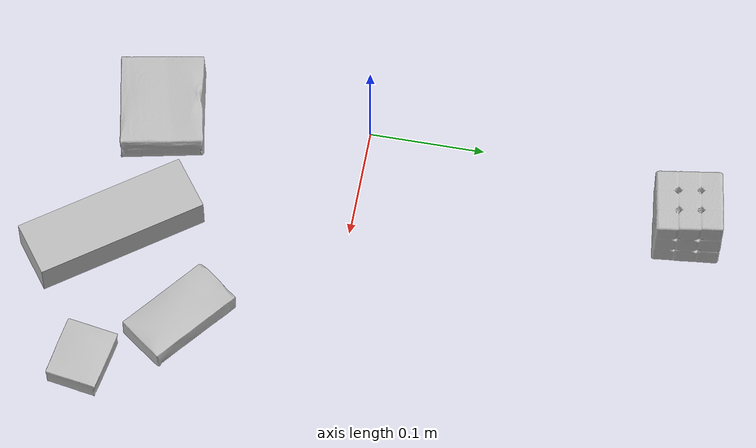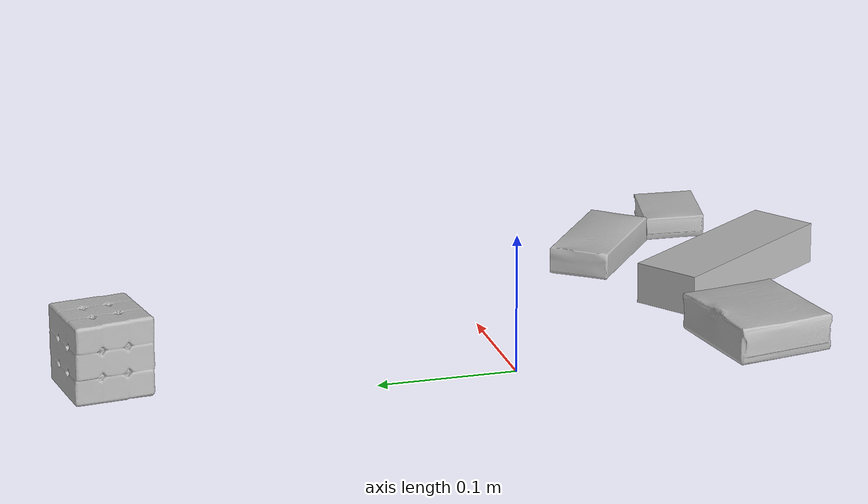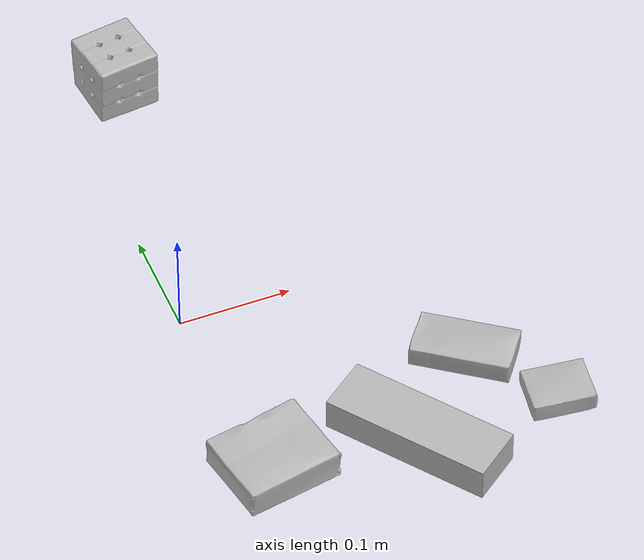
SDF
<sdf version="1.4">
  <world name="default">
    <light name="light1" type="point">
      <pose>0 0 1 0 0 0</pose>
      <diffuse>3 3 3 1</diffuse>
      <specular>3 3 3 1</specular>
    </light>
    <light name="light2" type="point">
      <pose>0 0.5 2 0 0 0</pose>
      <diffuse>1 1 1 1</diffuse>
      <specular>1 1 1 1</specular>
    </light>
    <light name="light3" type="point">
      <pose>0 0.5 2 0 0 0</pose>
      <diffuse>3 3 3 1</diffuse>
      <specular>3 3 3 1</specular>
    </light>
    <scene>
      <ambient>0.7 0.7 0.7</ambient>
    </scene>
    <model name="box1">
      <link name="link_box1">
        <collision name="default">
          <geometry>
            <mesh>
              <uri>model://sugar_box/collision_meshes/collision.obj</uri>
              <scale>0.5 0.5 0.5</scale>
            </mesh>
          </geometry>
          <surface>
            <friction>
              <ode>
                <mu>0.5</mu>
                <mu2>0.5</mu2>
              </ode>
            </friction>
          <contact>
        <ode>
            <max_vel>0</max_vel>
            <min_depth>0.0001</min_depth>
            <kp>1e8</kp>
        </ode>
    </contact></surface>
        </collision>
        <visual name="default">
          <geometry>
            <mesh>
              <uri>model://sugar_box/visual_meshes/visual.dae</uri>
              <scale>0.5 0.5 0.5</scale>
            </mesh>
          </geometry>
        </visual>
        <inertial>
          <mass>0.06211651861667633</mass>
          <pose>0.0005171863595023751 1.9245546354795806e-05 -0.00018182402709499002 -0.00040462630054681676 0.0010506634057476226 0.0026153787889456807</pose>
          <inertia>
            <ixx>1.2938825e-05</ixx>
            <iyy>4.1820942e-05</iyy>
            <izz>5.0064667e-05</izz>
            <ixy>0</ixy>
            <ixz>0</ixz>
            <iyz>0</iyz>
          </inertia>
        </inertial>
      </link>
      <pose>0.20872554183006287 -0.12540565431118011 0.011399300768971443 0.0007755947420407959 -0.023433309735905905 -0.6632557056507068</pose>
    </model>
    <model name="box2">
      <link name="link_box2">
        <collision name="default">
          <geometry>
            <mesh>
              <uri>model://rubiks_cube/collision_meshes/collision.obj</uri>
              <scale>1.0 1.0 1.0</scale>
            </mesh>
          </geometry>
          <surface>
            <friction>
              <ode>
                <mu>0.5</mu>
                <mu2>0.5</mu2>
              </ode>
            </friction>
          <contact>
        <ode>
            <max_vel>0</max_vel>
            <min_depth>0.0001</min_depth>
            <kp>1e8</kp>
        </ode>
    </contact></surface>
        </collision>
        <visual name="default">
          <geometry>
            <mesh>
              <uri>model://rubiks_cube/visual_meshes/visual.dae</uri>
              <scale>1.0 1.0 1.0</scale>
            </mesh>
          </geometry>
        </visual>
        <inertial>
          <mass>0.2700360119342804</mass>
          <pose>2.6721041649580002e-05 5.256967051536776e-05 -7.264316536748083e-06 -0.05467324422766238 -0.0981422115654675 -0.034454566623261795</pose>
          <inertia>
            <ixx>0.00014921304</ixx>
            <iyy>0.00014851718</iyy>
            <izz>0.00015044949</izz>
            <ixy>0</ixy>
            <ixz>0</ixz>
            <iyz>0</iyz>
          </inertia>
        </inertial>
      </link>
      <pose>0.0471007376909256 0.2826857268810272 0.028678998351097107 -1.6348637167000915e-06 3.061273543406803e-07 -1.4271457897043236</pose>
    </model>
    <model name="box3">
      <link name="link_box3">
        <collision name="default">
          <geometry>
            <mesh>
              <uri>model://jenga/collision_meshes/collision.obj</uri>
              <scale>1.0 1.0 1.0</scale>
            </mesh>
          </geometry>
          <surface>
            <friction>
              <ode>
                <mu>0.5</mu>
                <mu2>0.5</mu2>
              </ode>
            </friction>
          <contact>
        <ode>
            <max_vel>0</max_vel>
            <min_depth>0.0001</min_depth>
            <kp>1e8</kp>
        </ode>
    </contact></surface>
        </collision>
        <visual name="default">
          <geometry>
            <mesh>
              <uri>model://jenga/visual_meshes/visual.dae</uri>
              <scale>1.0 1.0 1.0</scale>
            </mesh>
          </geometry>
        </visual>
        <inertial>
          <mass>0.12586519122123718</mass>
          <pose>-2.502855807051674e-07 -0.00010250010382151231 -4.0923401684267446e-05 0.0 -7.342154049184251e-07 0.0</pose>
          <inertia>
            <ixx>3.482995e-05</ixx>
            <iyy>0.0002360068</iyy>
            <izz>0.00025195733</izz>
            <ixy>0</ixy>
            <ixz>0</ixz>
            <iyz>0</iyz>
          </inertia>
        </inertial>
      </link>
      <pose>0.13547314703464508 -0.19953611493110657 0.01499999687075615 2.1005933676852717e-08 -3.331425660091705e-09 2.204317549361354</pose>
    </model>
    <model name="box4">
      <link name="link_box4">
        <collision name="default">
          <geometry>
            <mesh>
              <uri>model://gelatin_box/collision_meshes/collision.obj</uri>
              <scale>1.0 1.0 1.0</scale>
            </mesh>
          </geometry>
          <surface>
            <friction>
              <ode>
                <mu>0.5</mu>
                <mu2>0.5</mu2>
              </ode>
            </friction>
          <contact>
        <ode>
            <max_vel>0</max_vel>
            <min_depth>0.0001</min_depth>
            <kp>1e8</kp>
        </ode>
    </contact></surface>
        </collision>
        <visual name="default">
          <geometry>
            <mesh>
              <uri>model://gelatin_box/visual_meshes/visual.dae</uri>
              <scale>1.0 1.0 1.0</scale>
            </mesh>
          </geometry>
        </visual>
        <inertial>
          <mass>0.0925464928150177</mass>
          <pose>0.0004319618456065655 0.00011156871914863586 -0.0003640321083366871 -0.0010503719798216618 -0.004755819622564704 0.01644055760929568</pose>
          <inertia>
            <ixx>6.533027e-05</ixx>
            <iyy>4.6665074e-05</iyy>
            <izz>9.9447236e-05</izz>
            <ixy>0</ixy>
            <ixz>0</ixz>
            <iyz>0</iyz>
          </inertia>
        </inertial>
      </link>
      <pose>0.013647293671965599 -0.18084798753261566 0.015168318524956703 0.005596899263544656 -0.007303928679982985 1.749846153832799</pose>
    </model>
    <model name="box5">
      <link name="link_box5">
        <collision name="default">
          <geometry>
            <mesh>
              <uri>model://pudding_box/collision_meshes/collision.obj</uri>
              <scale>0.5 0.5 0.5</scale>
            </mesh>
          </geometry>
          <surface>
            <friction>
              <ode>
                <mu>0.5</mu>
                <mu2>0.5</mu2>
              </ode>
            </friction>
          <contact>
        <ode>
            <max_vel>0</max_vel>
            <min_depth>0.0001</min_depth>
            <kp>1e8</kp>
        </ode>
    </contact></surface>
        </collision>
        <visual name="default">
          <geometry>
            <mesh>
              <uri>model://pudding_box/visual_meshes/visual.dae</uri>
              <scale>0.5 0.5 0.5</scale>
            </mesh>
          </geometry>
        </visual>
        <inertial>
          <mass>0.0266704261302948</mass>
          <pose>0.00024474109522998333 0.00040339428232982755 -0.0002594413817860186 0.005213101812636465 -0.006603797316727521 0.020079823300208206</pose>
          <inertia>
            <ixx>7.5373864e-06</ixx>
            <iyy>5.0712065e-06</iyy>
            <izz>1.113092e-05</izz>
            <ixy>0</ixy>
            <ixz>0</ixz>
            <iyz>0</iyz>
          </inertia>
        </inertial>
      </link>
      <pose>0.2622883915901184 -0.19785667955875397 0.009862900711596012 0.022348561153199036 -0.01139170568453219 -1.7221082140824555</pose>
    </model>
  <physics type="ode">
      <max_contacts>50</max_contacts>
      <ode>
        <solver>
          <type>quick</type>
          <iters>75</iters>
        </solver>
        <constraints>
          <contact_max_correcting_vel>0</contact_max_correcting_vel>
          <contact_surface_layer>0</contact_surface_layer>
        </constraints>
      </ode>
    </physics></world>
</sdf>
